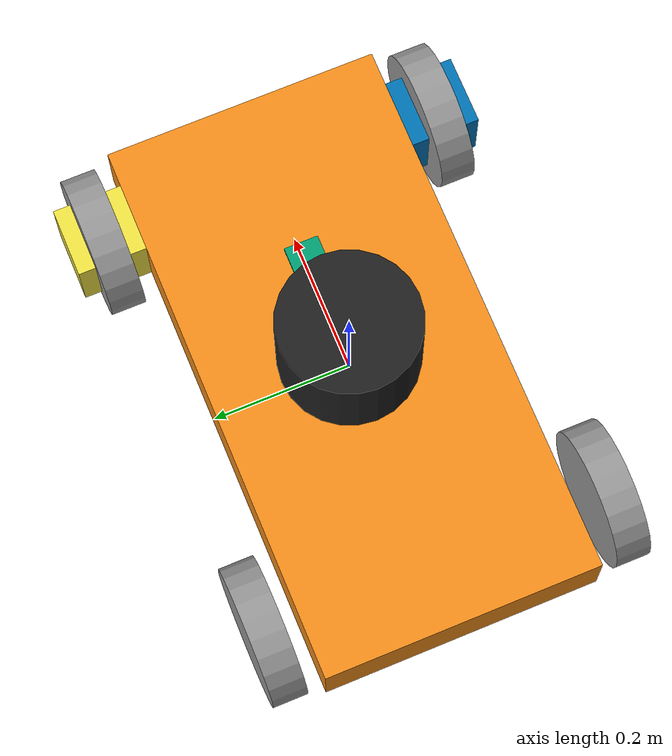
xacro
<?xml version='1.0'?>
<robot name="ackermannbot" xmlns:xacro="http://www.ros.org/wiki/xacro">

  <!-- LINK: base_footprint -->
  <link name="base_footprint"></link>

  <!-- LINK: chassis -->
  <link name='chassis'>
    <pose>0 0 0 0 0 0</pose>

    <inertial>
      <mass value="100.0"/>
      <origin xyz="0 0 0" rpy=" 0 0 0"/>
      <inertia ixx="0.1" ixy="0" ixz="0" iyy="0.1" iyz="0" izz="0.1"/>
    </inertial>

    <collision name='chassis_collision'>
      <origin xyz="0 0 0" rpy=" 0 0 0"/>
      <geometry>
        <box size=".8 .4 .1"/>
      </geometry>
    </collision>

    <visual name='chassis_visual'>
      <origin xyz="0 0 0" rpy=" 0 0 0"/>
      <geometry>
        <box size=".8 .4 .1"/>
      </geometry>
    </visual>
  </link>

  <!-- LINK: main_steer -->
  <link name='main_steer'>
    <pose>0 0 0 0 0 0</pose>

    <inertial>
      <mass value="0.001"/>
      <origin xyz="0 0 0" rpy=" 0 0 0"/>
      <inertia ixx="0.1" ixy="0" ixz="0" iyy="0.1" iyz="0" izz="0.1"/>
    </inertial>

    <collision name='main_steer_collision'>
      <origin xyz="0 0 0" rpy=" 0 0 0"/>
      <geometry>
        <box size=".05 .05 .05"/>
      </geometry>
    </collision>

    <visual name='main_steer_visual'>
      <origin xyz="0 0 0" rpy=" 0 0 0"/>
      <geometry>
        <box size=".05 .05 .05"/>
      </geometry>
    </visual>
  </link>

  <!-- LINK: left_steer -->
  <link name='left_steer'>
    <pose>0 0 0 0 0 0</pose>

    <inertial>
      <mass value="0.001"/>
      <origin xyz="0 0 0" rpy=" 0 0 0"/>
      <inertia ixx="0.1" ixy="0" ixz="0" iyy="0.1" iyz="0" izz="0.1"/>
    </inertial>

    <collision name='left_steer_collision'>
      <origin xyz="0 0 0" rpy=" 0 0 0"/>
      <geometry>
        <box size=".1 .1 .1"/>
      </geometry>
    </collision>

    <visual name='left_steer_visual'>
      <origin xyz="0 0 0" rpy=" 0 0 0"/>
      <geometry>
        <box size=".1 .1 .1"/>
      </geometry>
    </visual>
  </link>

  <!-- LINK: right_steer -->
  <link name='right_steer'>
    <pose>0 0 0 0 0 0</pose>

    <inertial>
      <mass value="0.001"/>
      <origin xyz="0 0 0" rpy=" 0 0 0"/>
      <inertia ixx="0.1" ixy="0" ixz="0" iyy="0.1" iyz="0" izz="0.1"/>
    </inertial>

    <collision name='right_steer_collision'>
      <origin xyz="0 0 0" rpy=" 0 0 0"/>
      <geometry>
        <box size=".1 .1 .1"/>
      </geometry>
    </collision>

    <visual name='right_steer_visual'>
      <origin xyz="0 0 0" rpy=" 0 0 0"/>
      <geometry>
        <box size=".1 .1 .1"/>
      </geometry>
    </visual>
  </link>

  <!-- LINK: front_left_wheel -->
  <link name="front_left_wheel">
    <inertial>
      <mass value="8.0"/>
      <origin xyz="0 0 0" rpy=" 0 1.5707 1.5707"/>
      <inertia ixx="0.1" ixy="0" ixz="0" iyy="0.1" iyz="0" izz="0.1"/>
    </inertial>

    <collision>
      <origin xyz="0 0 0" rpy=" 0 1.5707 1.5707"/>
      <geometry>
        <cylinder length="0.05" radius="0.1"/>
      </geometry>
    </collision>

    <visual>
      <origin xyz="0 0 0" rpy=" 0 1.5707 1.5707"/>
      <geometry>
        <cylinder length="0.05" radius="0.1"/>
      </geometry>
    </visual>
  </link>

  <!-- LINK: back_left_wheel -->
  <link name="back_left_wheel">
    <inertial>
      <mass value="8.0"/>
      <origin xyz="0 0 0" rpy=" 0 1.5707 1.5707"/>
      <inertia ixx="0.1" ixy="0" ixz="0" iyy="0.1" iyz="0" izz="0.1"/>
    </inertial>

    <collision>
      <origin xyz="0 0 0" rpy=" 0 1.5707 1.5707"/>
      <geometry>
        <cylinder length="0.05" radius="0.1"/>
      </geometry>
    </collision>

    <visual>
      <origin xyz="0 0 0" rpy=" 0 1.5707 1.5707"/>
      <geometry>
        <cylinder length="0.05" radius="0.1"/>
      </geometry>
    </visual>
  </link>

  <!-- LINK: front_right_wheel -->
  <link name="front_right_wheel">
    <inertial>
      <mass value="8.0"/>
      <origin xyz="0 0 0" rpy=" 0 1.5707 1.5707"/>
      <inertia ixx="0.1" ixy="0" ixz="0" iyy="0.1" iyz="0" izz="0.1"/>
    </inertial>

    <collision>
      <origin xyz="0 0 0" rpy=" 0 1.5707 1.5707"/>
      <geometry>
        <cylinder length="0.05" radius="0.1"/>
      </geometry>
    </collision>

    <visual>
      <origin xyz="0 0 0" rpy=" 0 1.5707 1.5707"/>
      <geometry>
        <cylinder length="0.05" radius="0.1"/>
      </geometry>
    </visual>
  </link>

  <!-- LINK: back_right_wheel -->
  <link name="back_right_wheel">
    <inertial>
      <mass value="8.0"/>
      <origin xyz="0 0 0" rpy=" 0 1.5707 1.5707"/>
      <inertia ixx="0.1" ixy="0" ixz="0" iyy="0.1" iyz="0" izz="0.1"/>
    </inertial>

    <collision>
      <origin xyz="0 0 0" rpy=" 0 1.5707 1.5707"/>
      <geometry>
        <cylinder length="0.05" radius="0.1"/>
      </geometry>
    </collision>

    <visual>
      <origin xyz="0 0 0" rpy=" 0 1.5707 1.5707"/>
      <geometry>
        <cylinder length="0.05" radius="0.1"/>
      </geometry>
    </visual>
  </link>

  <!-- LINK: lidar -->
  <link name="lidar">
    <inertial>
      <mass value="1e-5"/>
      <origin xyz="0 0 0" rpy=" 0 0 0"/>
      <inertia ixx="1e-6" ixy="0" ixz="0" iyy="1e-6" iyz="0" izz="1e-6"/>
    </inertial>

    <visual name="lidar_visual">
      <origin xyz="0 0 0" rpy="0 0 0" />
      <geometry>
        <cylinder length="0.15" radius="0.1"/>
      </geometry>
    </visual>

    <collision name="lidar_colision">
      <origin xyz="0 0 0" rpy="0 0 0" />
      <geometry>
        <cylinder length="0.15" radius="0.1"/>
      </geometry>
    </collision>
  </link>

  <!-- JOINT: chassis -->
  <joint name="chassis_joint" type="fixed">
    <origin xyz="0 0 0" rpy="0 0 0"/>
    <parent link="base_footprint"/>
    <child link="chassis"/>
  </joint>

  <!-- JOINT: main_steer -->
  <joint type="continuous" name="main_steer_joint">
    <origin xyz=".15 0 .03" rpy="0 0 0"/>
    <child link="main_steer"/>
    <parent link="base_footprint"/>
    <axis xyz="0 0 1" rpy="0 0 0"/>
    <limit effort="10000" velocity="1000"/>
    <dynamics damping="1.0" friction="1.0"/>
  </joint>

  <!-- JOINT: left_steer -->
  <joint type="continuous" name="left_steer_joint">
    <origin xyz="0.3 0.25 0" rpy="0 0 0"/>
    <child link="left_steer"/>
    <parent link="base_footprint"/>
    <axis xyz="0 0 1" rpy="0 0 0"/>
    <limit effort="10000" velocity="1000"/>
    <dynamics damping="1.0" friction="1.0"/>
  </joint>

  <!-- JOINT: right_steer -->
  <joint type="continuous" name="right_steer_joint">
    <origin xyz="0.3 -0.25 0" rpy="0 0 0"/>
    <child link="right_steer"/>
    <parent link="base_footprint"/>
    <axis xyz="0 0 1" rpy="0 0 0"/>
    <limit effort="10000" velocity="1000"/>
    <dynamics damping="1.0" friction="1.0"/>
  </joint>

  <!-- JOINT: wheel -->
  <joint type="continuous" name="front_left_wheel_joint">
    <origin xyz="0 0 0" rpy="0 0 0"/>
    <child link="front_left_wheel"/>
    <parent link="left_steer"/>
    <axis xyz="0 1 0" rpy="0 0 0"/>
    <limit effort="10000" velocity="1000"/>
    <dynamics damping="1.0" friction="1.0"/>
  </joint>

  <!-- JOINT: wheel -->
  <joint type="continuous" name="front_right_wheel_joint">
    <origin xyz="0 0 0" rpy="0 0 0"/>
    <child link="front_right_wheel"/>
    <parent link="right_steer"/>
    <axis xyz="0 1 0" rpy="0 0 0"/>
    <limit effort="10000" velocity="1000"/>
    <dynamics damping="1.0" friction="1.0"/>
  </joint>

  <!-- JOINT: wheel -->
  <joint type="continuous" name="back_left_wheel_joint">
    <origin xyz="-0.3 0.25 0" rpy="0 0 0"/>
    <child link="back_left_wheel"/>
    <parent link="base_footprint"/>
    <axis xyz="0 1 0" rpy="0 0 0"/>
    <limit effort="10000" velocity="1000"/>
    <dynamics damping="1.0" friction="1.0"/>
  </joint>

  <!-- JOINT: wheel -->
  <joint type="continuous" name="back_right_wheel_joint">
    <origin xyz="-0.3 -0.25 0" rpy="0 0 0"/>
    <child link="back_right_wheel"/>
    <parent link="base_footprint"/>
    <axis xyz="0 1 0" rpy="0 0 0"/>
    <limit effort="10000" velocity="1000"/>
    <dynamics damping="1.0" friction="1.0"/>
  </joint>

  <!-- JOINT: lidar -->
  <joint type="fixed" name="lidar_joint">
    <origin xyz="0 0 0.125" rpy="0 0 0"/>
    <child link="lidar"/>
    <parent link="base_footprint"/>
    <axis xyz="0 0 1" rpy="0 0 0"/>
  </joint>

  <!-- COLOR: chassis -->
  <gazebo reference="chassis">
    <material>Gazebo/Orange</material>
  </gazebo>

  <!-- COLOR: wheel -->
  <gazebo reference="front_left_wheel">
    <material>Gazebo/Grey</material>
  </gazebo>

  <!-- COLOR: wheel -->
  <gazebo reference="back_left_wheel">
    <material>Gazebo/Grey</material>
  </gazebo>

  <!-- COLOR: wheel -->
  <gazebo reference="front_right_wheel">
    <material>Gazebo/Grey</material>
  </gazebo>

  <!-- COLOR: wheel -->
  <gazebo reference="back_right_wheel">
    <material>Gazebo/Grey</material>
  </gazebo>

  <!-- COLOR: lidar -->
  <gazebo reference="lidar">
    <material>Gazebo/Black</material>
  </gazebo>

  <!-- PLUGIN: drive -->
  <gazebo>
    <plugin name="ackermann_drive_controller" filename="libgazebo_ros_ackermann_drive.so">
      <ros>
        <namespace>/ackermannbot</namespace>
        <argument>/cmd_vel:=cmd_vel</argument>
        <argument>/odom:=odom</argument>
        <argument>/distance:=distance</argument>
      </ros>
      <update_rate>100.0</update_rate>
      <odometry_frame>odom</odometry_frame>
      <robot_base_frame>base_footprint</robot_base_frame>

      <front_left_joint>front_left_wheel_joint</front_left_joint>
      <front_right_joint>front_right_wheel_joint</front_right_joint>
      <rear_left_joint>back_left_wheel_joint</rear_left_joint>
      <rear_right_joint>back_right_wheel_joint</rear_right_joint>

      <left_steering_joint>left_steer_joint</left_steering_joint>
      <right_steering_joint>right_steer_joint</right_steering_joint>
      <steering_wheel_joint>main_steer_joint</steering_wheel_joint>

      <max_steer>0.6458</max_steer>
      <max_steering_angle>7.85</max_steering_angle>
      <max_speed>100</max_speed>

      <left_steering_pid_gain>1500 0 1</left_steering_pid_gain>
      <left_steering_i_range>0 0</left_steering_i_range>
      <right_steering_pid_gain>1500 0 1</right_steering_pid_gain>
      <right_steering_i_range>0 0</right_steering_i_range>
      <linear_velocity_pid_gain>10 0 1</linear_velocity_pid_gain>
      <linear_velocity_i_range>0 0</linear_velocity_i_range>

      <publish_odom>true</publish_odom>
      <publish_odom_tf>true</publish_odom_tf>
      <publish_wheel_tf>false</publish_wheel_tf>
      <publish_distance>false</publish_distance>
    </plugin>
  </gazebo>

  <!-- PLUGIN: sensor -->
  <gazebo reference="lidar">
    <sensor type="ray" name="lidar_sensor">
      <pose>0 0 0.05 0 0 0</pose>
      <visualize>false</visualize>
      <update_rate>40</update_rate>
      <ray>
        <scan>
          <horizontal>
            <samples>600</samples>
            <resolution>1</resolution>
            <min_angle>-3.141592</min_angle>
            <max_angle>3.141592</max_angle>
          </horizontal>
        </scan>
        <range>
          <min>0.15</min>
          <max>10.0</max>
          <resolution>0.01</resolution>
        </range>
        <noise>
          <type>gaussian</type>
          <mean>0.0</mean>
          <stddev>0.01</stddev>
        </noise>
      </ray>
      <update_rate>30</update_rate>
      <plugin name="laser_controller" filename="libgazebo_ros_ray_sensor.so">
        <ros>
          <argument>~/out:=scan</argument>
        </ros>
        <output_type>sensor_msgs/LaserScan</output_type>
      </plugin>
    </sensor>
  </gazebo>

</robot>
